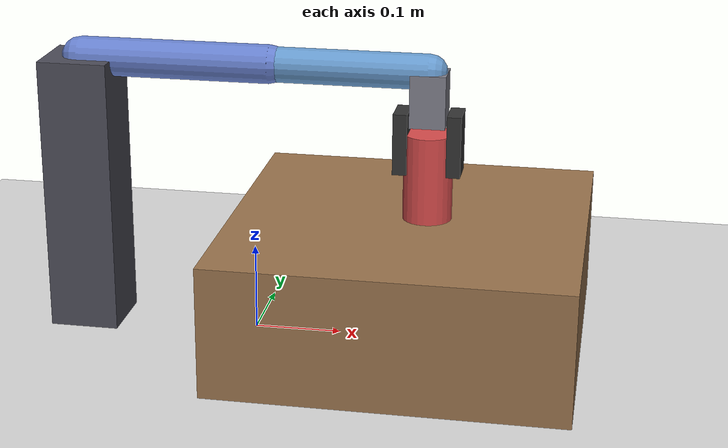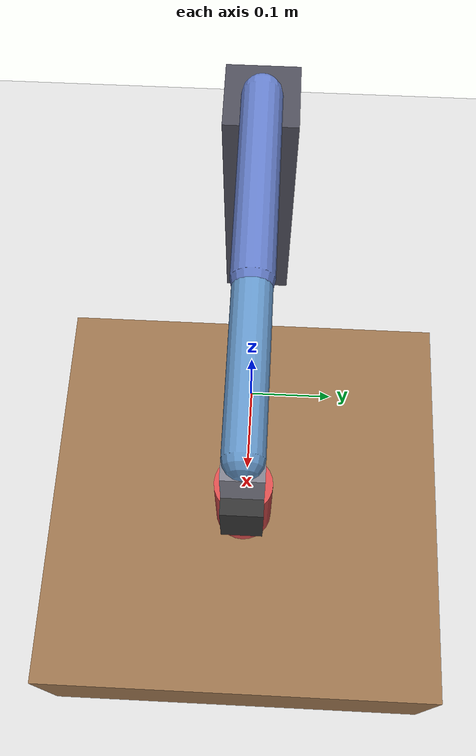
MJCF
<mujoco model="loophole_robotics">
  <option timestep="0.002" gravity="0 0 -9.81" integrator="implicitfast"/>
  <compiler autolimits="true"/>
  <default>
    <joint damping="4.0" armature="0.3"/>
    <geom friction="1.5 0.05 0.001" density="700"/>
    <position kp="200" forcerange="-150 150"/>
  </default>
  <worldbody>
    <light pos="0 0 2" dir="0 0 -1"/>
    <geom name="floor" type="plane" size="2 2 0.1" rgba="0.85 0.85 0.85 1"/>
    <geom name="post" type="box" pos="-0.2 0 0.16" size="0.04 0.04 0.16" rgba="0.3 0.3 0.35 1"/>
    <geom name="table" type="box" pos="0.18 0 0.075" size="0.2 0.2 0.075" rgba="0.6 0.45 0.3 1"/>

    <!-- arm reaches forward (+x) from the post, gripper points down -->
    <body name="upper" pos="-0.2 0 0.32">
      <joint name="shoulder" type="hinge" axis="0 1 0" range="-2.6 2.6"/>
      <geom type="capsule" fromto="0 0 0 0.22 0 0" size="0.022" rgba="0.4 0.5 0.8 1"/>
      <body name="fore" pos="0.22 0 0">
        <joint name="elbow" type="hinge" axis="0 1 0" range="-2.8 2.8"/>
        <geom type="capsule" fromto="0 0 0 0.18 0 0" size="0.02" rgba="0.4 0.6 0.8 1"/>
        <body name="wrist" pos="0.18 0 0">
          <joint name="wrist" type="hinge" axis="0 1 0" range="-2.8 2.8"/>
          <geom type="box" size="0.02 0.02 0.03" pos="0 0 -0.03" rgba="0.5 0.5 0.55 1"/>
          <body name="lfing" pos="0.03 0 -0.08">
            <joint name="lgrip" type="slide" axis="-1 0 0" range="0 0.04"/>
            <geom type="box" size="0.008 0.02 0.035" rgba="0.2 0.2 0.2 1"/>
          </body>
          <body name="rfing" pos="-0.03 0 -0.08">
            <joint name="rgrip" type="slide" axis="1 0 0" range="0 0.04"/>
            <geom type="box" size="0.008 0.02 0.035" rgba="0.2 0.2 0.2 1"/>
          </body>
        </body>
      </body>
    </body>

    <body name="cup" pos="0.2 0 0.2">
      <freejoint name="cupfree"/>
      <geom name="cupgeom" type="cylinder" size="0.028 0.05" rgba="0.85 0.3 0.3 1" density="250"/>
    </body>
  </worldbody>
  <actuator>
    <position name="a_shoulder" joint="shoulder" ctrlrange="-2.6 2.6"/>
    <position name="a_elbow"    joint="elbow"    ctrlrange="-2.8 2.8"/>
    <position name="a_wrist"    joint="wrist"    ctrlrange="-2.8 2.8"/>
    <position name="a_lgrip"    joint="lgrip"    ctrlrange="0 0.04" kp="500"/>
    <position name="a_rgrip"    joint="rgrip"    ctrlrange="0 0.04" kp="500"/>
  </actuator>
</mujoco>
